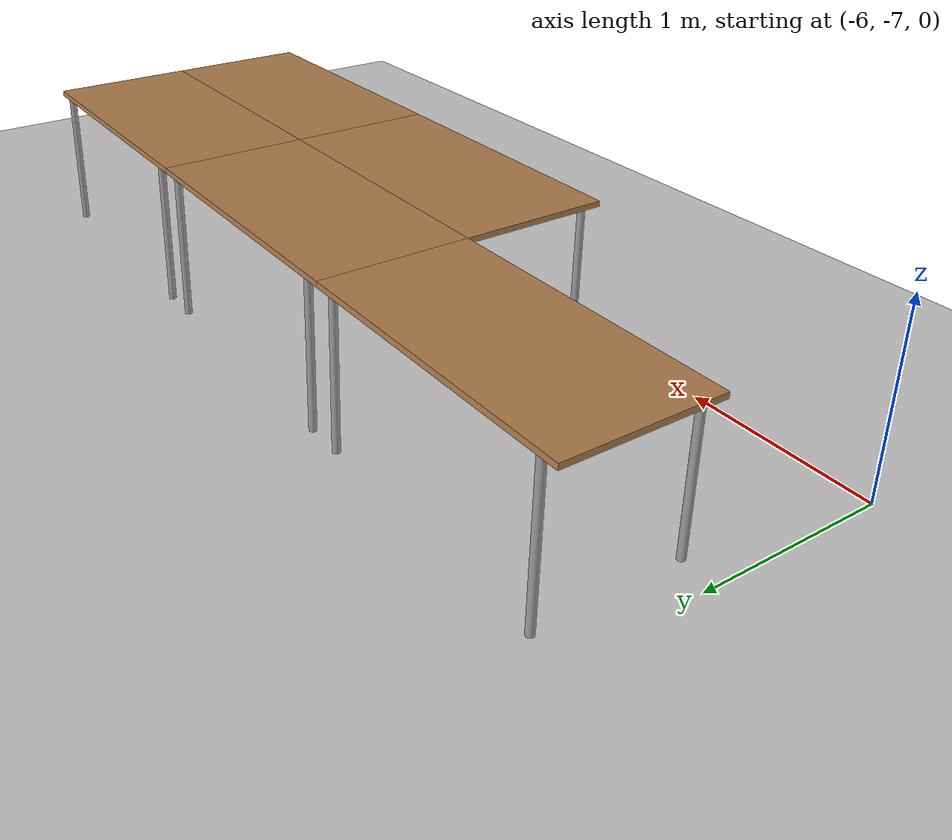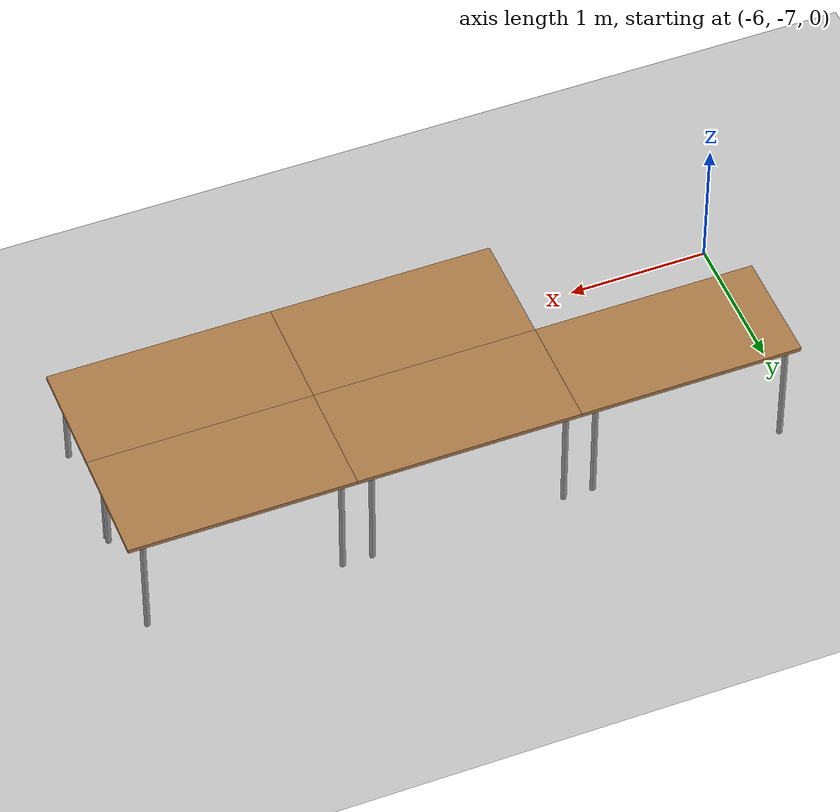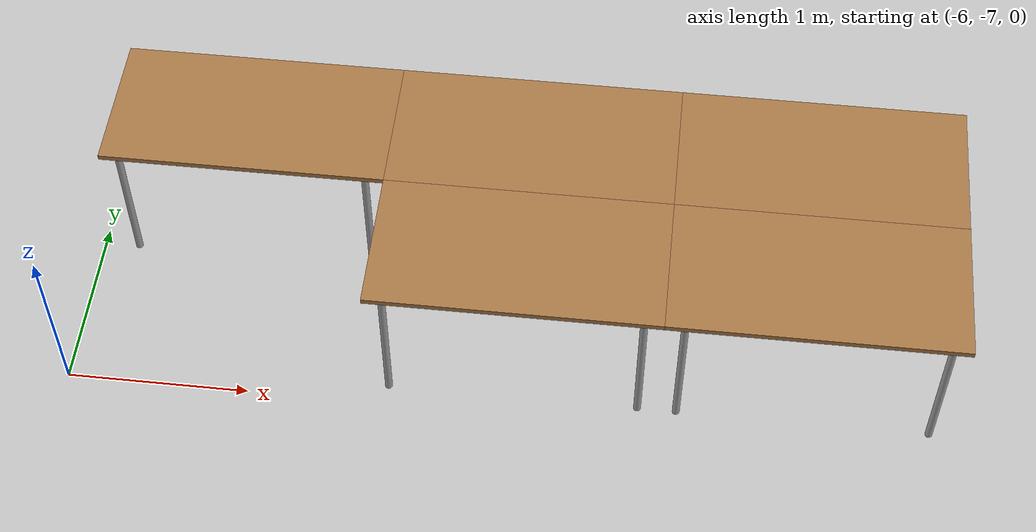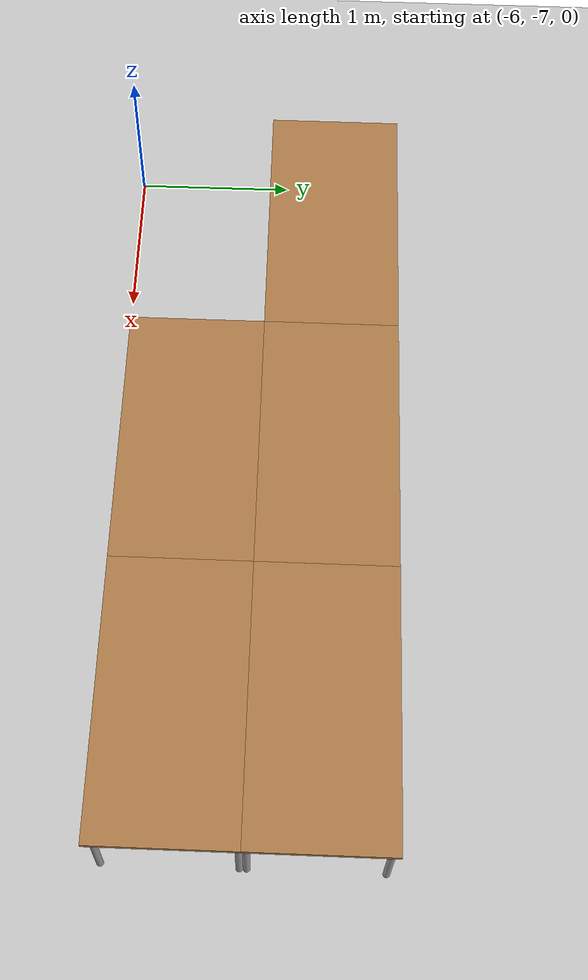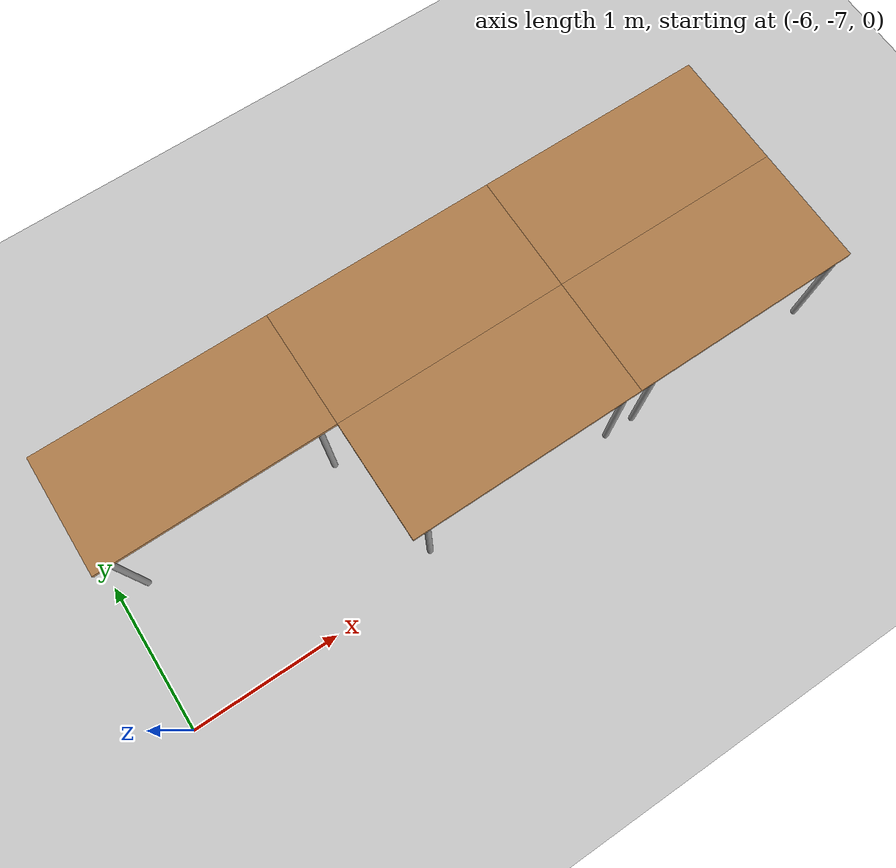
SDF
<sdf version="1.6">
 <world name="default">
  <model name="ground_plane">
   <static>1</static>
   <link name="link">
    <collision name="collision">
     <geometry><plane><normal>0 0 1</normal><size>100 100</size></plane></geometry>
     <surface><friction><ode><mu>100</mu><mu2>50</mu2></ode></friction></surface>
    </collision>
    <visual name="visual">
     <cast_shadows>0</cast_shadows>
     <geometry><plane><normal>0 0 1</normal><size>100 100</size></plane></geometry>
     <material>
      <script><uri>file://media/materials/scripts/gazebo.material</uri><name>Gazebo/Grey</name></script>
     </material>
    </visual>
   </link>
  </model>
  <model name="tablealt_0_clone_31">
   <link name="link">
    <inertial>
     <mass>1</mass>
     <inertia><ixx>1</ixx><ixy>0</ixy><ixz>0</ixz><iyy>1</iyy><iyz>0</iyz><izz>1</izz></inertia>
    </inertial>
    <visual name="back_right_leg">
     <pose>-0.68 -0.38 0.4 0 -0 0</pose>
     <geometry><cylinder><radius>0.02</radius><length>0.8</length></cylinder></geometry>
     <material>
      <script><uri>file://media/materials/scripts/gazebo.material</uri><name>Gazebo/Grey</name></script>
      <shader type="pixel"><normal_map>__default__</normal_map></shader>
      <ambient>0.3 0.3 0.3 1</ambient>
      <diffuse>0.7 0.7 0.7 1</diffuse>
      <specular>0.01 0.01 0.01 1</specular>
      <emissive>0 0 0 1</emissive>
     </material>
    </visual>
    <visual name="back_left_leg">
     <pose>-0.68 0.38 0.4 0 -0 0</pose>
     <geometry><cylinder><radius>0.02</radius><length>0.8</length></cylinder></geometry>
     <material>
      <script><uri>file://media/materials/scripts/gazebo.material</uri><name>Gazebo/Grey</name></script>
      <shader type="pixel"><normal_map>__default__</normal_map></shader>
      <ambient>0.3 0.3 0.3 1</ambient>
      <diffuse>0.7 0.7 0.7 1</diffuse>
      <specular>0.01 0.01 0.01 1</specular>
      <emissive>0 0 0 1</emissive>
     </material>
    </visual>
    <visual name="visual1">
     <pose>0 0 0.8 0 -0 0</pose>
     <geometry><box><size>1.57 0.8 0.03</size></box></geometry>
     <material>
      <script><uri>file://media/materials/scripts/gazebo.material</uri><name>Gazebo/Wood</name></script>
      <shader type="pixel"><normal_map>__default__</normal_map></shader>
      <ambient>0.92 0.92 0.68 1</ambient>
      <diffuse>1 1 1 1</diffuse>
      <specular>0.2 0.2 0.2 1</specular>
      <emissive>0 0 0 1</emissive>
     </material>
    </visual>
    <visual name="front_left_leg">
     <pose>0.68 0.38 0.4 0 -0 0</pose>
     <geometry><cylinder><radius>0.02</radius><length>0.8</length></cylinder></geometry>
     <material>
      <script><uri>file://media/materials/scripts/gazebo.material</uri><name>Gazebo/Grey</name></script>
      <shader type="pixel"><normal_map>__default__</normal_map></shader>
      <ambient>0.3 0.3 0.3 1</ambient>
      <diffuse>0.7 0.7 0.7 1</diffuse>
      <specular>0.01 0.01 0.01 1</specular>
      <emissive>0 0 0 1</emissive>
     </material>
    </visual>
    <visual name="front_right_leg">
     <pose>0.68 -0.38 0.4 0 -0 0</pose>
     <geometry><cylinder><radius>0.02</radius><length>0.8</length></cylinder></geometry>
     <material>
      <script><uri>file://media/materials/scripts/gazebo.material</uri><name>Gazebo/Grey</name></script>
      <shader type="pixel"><normal_map>__default__</normal_map></shader>
      <ambient>0.3 0.3 0.3 1</ambient>
      <diffuse>0.7 0.7 0.7 1</diffuse>
      <specular>0.01 0.01 0.01 1</specular>
      <emissive>0 0 0 1</emissive>
     </material>
    </visual>
    <collision name="front_right_leg">
     <pose>0.68 -0.38 0.4 0 -0 0</pose>
     <geometry><cylinder><radius>0.02</radius><length>0.8</length></cylinder></geometry>
     <surface>
      <friction>
       <ode><mu>1</mu><mu2>1</mu2><fdir1>0 0 0</fdir1><slip1>0</slip1><slip2>0</slip2></ode>
       <torsional>
        <coefficient>1</coefficient>
        <patch_radius>0</patch_radius>
        <surface_radius>0</surface_radius>
        <use_patch_radius>1</use_patch_radius>
        <ode><slip>0</slip></ode>
       </torsional>
      </friction>
      <bounce><restitution_coefficient>0</restitution_coefficient><threshold>1e+06</threshold></bounce>
      <contact>
       <collide_without_contact>0</collide_without_contact>
       <collide_without_contact_bitmask>1</collide_without_contact_bitmask>
       <collide_bitmask>1</collide_bitmask>
       <ode>
        <soft_cfm>0</soft_cfm>
        <soft_erp>0.2</soft_erp>
        <kp>1e+13</kp>
        <kd>1</kd>
        <max_vel>0.01</max_vel>
        <min_depth>0</min_depth>
       </ode>
       <bullet>
        <split_impulse>1</split_impulse>
        <split_impulse_penetration_threshold>-0.01</split_impulse_penetration_threshold>
        <soft_cfm>0</soft_cfm>
        <soft_erp>0.2</soft_erp>
        <kp>1e+13</kp>
        <kd>1</kd>
       </bullet>
      </contact>
     </surface>
    </collision>
    <collision name="surface">
     <pose>0 0 0.8 0 -0 0</pose>
     <geometry><box><size>1.5 0.8 0.03</size></box></geometry>
     <surface>
      <friction>
       <ode><mu>0.6</mu><mu2>0.6</mu2><fdir1>0 0 0</fdir1><slip1>0</slip1><slip2>0</slip2></ode>
       <torsional>
        <coefficient>1</coefficient>
        <patch_radius>0</patch_radius>
        <surface_radius>0</surface_radius>
        <use_patch_radius>1</use_patch_radius>
        <ode><slip>0</slip></ode>
       </torsional>
      </friction>
      <bounce><restitution_coefficient>0</restitution_coefficient><threshold>1e+06</threshold></bounce>
      <contact>
       <collide_without_contact>0</collide_without_contact>
       <collide_without_contact_bitmask>1</collide_without_contact_bitmask>
       <collide_bitmask>1</collide_bitmask>
       <ode>
        <soft_cfm>0</soft_cfm>
        <soft_erp>0.2</soft_erp>
        <kp>1e+13</kp>
        <kd>1</kd>
        <max_vel>0.01</max_vel>
        <min_depth>0</min_depth>
       </ode>
       <bullet>
        <split_impulse>1</split_impulse>
        <split_impulse_penetration_threshold>-0.01</split_impulse_penetration_threshold>
        <soft_cfm>0</soft_cfm>
        <soft_erp>0.2</soft_erp>
        <kp>1e+13</kp>
        <kd>1</kd>
       </bullet>
      </contact>
     </surface>
    </collision>
    <collision name="front_left_leg">
     <pose>0.68 0.38 0.4 0 -0 0</pose>
     <geometry><cylinder><radius>0.02</radius><length>0.8</length></cylinder></geometry>
     <surface>
      <friction>
       <ode><mu>1</mu><mu2>1</mu2><fdir1>0 0 0</fdir1><slip1>0</slip1><slip2>0</slip2></ode>
       <torsional>
        <coefficient>1</coefficient>
        <patch_radius>0</patch_radius>
        <surface_radius>0</surface_radius>
        <use_patch_radius>1</use_patch_radius>
        <ode><slip>0</slip></ode>
       </torsional>
      </friction>
      <bounce><restitution_coefficient>0</restitution_coefficient><threshold>1e+06</threshold></bounce>
      <contact>
       <collide_without_contact>0</collide_without_contact>
       <collide_without_contact_bitmask>1</collide_without_contact_bitmask>
       <collide_bitmask>1</collide_bitmask>
       <ode>
        <soft_cfm>0</soft_cfm>
        <soft_erp>0.2</soft_erp>
        <kp>1e+13</kp>
        <kd>1</kd>
        <max_vel>0.01</max_vel>
        <min_depth>0</min_depth>
       </ode>
       <bullet>
        <split_impulse>1</split_impulse>
        <split_impulse_penetration_threshold>-0.01</split_impulse_penetration_threshold>
        <soft_cfm>0</soft_cfm>
        <soft_erp>0.2</soft_erp>
        <kp>1e+13</kp>
        <kd>1</kd>
       </bullet>
      </contact>
     </surface>
    </collision>
    <collision name="back_left_leg">
     <pose>-0.68 0.38 0.4 0 -0 0</pose>
     <geometry><cylinder><radius>0.02</radius><length>0.8</length></cylinder></geometry>
     <surface>
      <friction>
       <ode><mu>1</mu><mu2>1</mu2><fdir1>0 0 0</fdir1><slip1>0</slip1><slip2>0</slip2></ode>
       <torsional>
        <coefficient>1</coefficient>
        <patch_radius>0</patch_radius>
        <surface_radius>0</surface_radius>
        <use_patch_radius>1</use_patch_radius>
        <ode><slip>0</slip></ode>
       </torsional>
      </friction>
      <bounce><restitution_coefficient>0</restitution_coefficient><threshold>1e+06</threshold></bounce>
      <contact>
       <collide_without_contact>0</collide_without_contact>
       <collide_without_contact_bitmask>1</collide_without_contact_bitmask>
       <collide_bitmask>1</collide_bitmask>
       <ode>
        <soft_cfm>0</soft_cfm>
        <soft_erp>0.2</soft_erp>
        <kp>1e+13</kp>
        <kd>1</kd>
        <max_vel>0.01</max_vel>
        <min_depth>0</min_depth>
       </ode>
       <bullet>
        <split_impulse>1</split_impulse>
        <split_impulse_penetration_threshold>-0.01</split_impulse_penetration_threshold>
        <soft_cfm>0</soft_cfm>
        <soft_erp>0.2</soft_erp>
        <kp>1e+13</kp>
        <kd>1</kd>
       </bullet>
      </contact>
     </surface>
    </collision>
    <collision name="back_right_leg">
     <pose>-0.68 -0.38 0.4 0 -0 0</pose>
     <geometry><cylinder><radius>0.02</radius><length>0.8</length></cylinder></geometry>
     <surface>
      <friction>
       <ode><mu>1</mu><mu2>1</mu2><fdir1>0 0 0</fdir1><slip1>0</slip1><slip2>0</slip2></ode>
       <torsional>
        <coefficient>1</coefficient>
        <patch_radius>0</patch_radius>
        <surface_radius>0</surface_radius>
        <use_patch_radius>1</use_patch_radius>
        <ode><slip>0</slip></ode>
       </torsional>
      </friction>
      <bounce><restitution_coefficient>0</restitution_coefficient><threshold>1e+06</threshold></bounce>
      <contact>
       <collide_without_contact>0</collide_without_contact>
       <collide_without_contact_bitmask>1</collide_without_contact_bitmask>
       <collide_bitmask>1</collide_bitmask>
       <ode>
        <soft_cfm>0</soft_cfm>
        <soft_erp>0.2</soft_erp>
        <kp>1e+13</kp>
        <kd>1</kd>
        <max_vel>0.01</max_vel>
        <min_depth>0</min_depth>
       </ode>
       <bullet>
        <split_impulse>1</split_impulse>
        <split_impulse_penetration_threshold>-0.01</split_impulse_penetration_threshold>
        <soft_cfm>0</soft_cfm>
        <soft_erp>0.2</soft_erp>
        <kp>1e+13</kp>
        <kd>1</kd>
       </bullet>
      </contact>
     </surface>
    </collision>
   </link>
   <static>1</static>
   <pose>-3.56 -6.5 0 0 -0 0</pose>
  </model>
  <model name="tablealt_0_clone_32">
   <link name="link">
    <inertial>
     <mass>1</mass>
     <inertia><ixx>1</ixx><ixy>0</ixy><ixz>0</ixz><iyy>1</iyy><iyz>0</iyz><izz>1</izz></inertia>
    </inertial>
    <visual name="back_right_leg">
     <pose>-0.68 -0.38 0.4 0 -0 0</pose>
     <geometry><cylinder><radius>0.02</radius><length>0.8</length></cylinder></geometry>
     <material>
      <script><uri>file://media/materials/scripts/gazebo.material</uri><name>Gazebo/Grey</name></script>
      <shader type="pixel"><normal_map>__default__</normal_map></shader>
      <ambient>0.3 0.3 0.3 1</ambient>
      <diffuse>0.7 0.7 0.7 1</diffuse>
      <specular>0.01 0.01 0.01 1</specular>
      <emissive>0 0 0 1</emissive>
     </material>
    </visual>
    <visual name="back_left_leg">
     <pose>-0.68 0.38 0.4 0 -0 0</pose>
     <geometry><cylinder><radius>0.02</radius><length>0.8</length></cylinder></geometry>
     <material>
      <script><uri>file://media/materials/scripts/gazebo.material</uri><name>Gazebo/Grey</name></script>
      <shader type="pixel"><normal_map>__default__</normal_map></shader>
      <ambient>0.3 0.3 0.3 1</ambient>
      <diffuse>0.7 0.7 0.7 1</diffuse>
      <specular>0.01 0.01 0.01 1</specular>
      <emissive>0 0 0 1</emissive>
     </material>
    </visual>
    <visual name="visual1">
     <pose>0 0 0.8 0 -0 0</pose>
     <geometry><box><size>1.57 0.8 0.03</size></box></geometry>
     <material>
      <script><uri>file://media/materials/scripts/gazebo.material</uri><name>Gazebo/Wood</name></script>
      <shader type="pixel"><normal_map>__default__</normal_map></shader>
      <ambient>0.92 0.92 0.68 1</ambient>
      <diffuse>1 1 1 1</diffuse>
      <specular>0.2 0.2 0.2 1</specular>
      <emissive>0 0 0 1</emissive>
     </material>
    </visual>
    <visual name="front_left_leg">
     <pose>0.68 0.38 0.4 0 -0 0</pose>
     <geometry><cylinder><radius>0.02</radius><length>0.8</length></cylinder></geometry>
     <material>
      <script><uri>file://media/materials/scripts/gazebo.material</uri><name>Gazebo/Grey</name></script>
      <shader type="pixel"><normal_map>__default__</normal_map></shader>
      <ambient>0.3 0.3 0.3 1</ambient>
      <diffuse>0.7 0.7 0.7 1</diffuse>
      <specular>0.01 0.01 0.01 1</specular>
      <emissive>0 0 0 1</emissive>
     </material>
    </visual>
    <visual name="front_right_leg">
     <pose>0.68 -0.38 0.4 0 -0 0</pose>
     <geometry><cylinder><radius>0.02</radius><length>0.8</length></cylinder></geometry>
     <material>
      <script><uri>file://media/materials/scripts/gazebo.material</uri><name>Gazebo/Grey</name></script>
      <shader type="pixel"><normal_map>__default__</normal_map></shader>
      <ambient>0.3 0.3 0.3 1</ambient>
      <diffuse>0.7 0.7 0.7 1</diffuse>
      <specular>0.01 0.01 0.01 1</specular>
      <emissive>0 0 0 1</emissive>
     </material>
    </visual>
    <collision name="front_right_leg">
     <pose>0.68 -0.38 0.4 0 -0 0</pose>
     <geometry><cylinder><radius>0.02</radius><length>0.8</length></cylinder></geometry>
     <surface>
      <friction>
       <ode><mu>1</mu><mu2>1</mu2><fdir1>0 0 0</fdir1><slip1>0</slip1><slip2>0</slip2></ode>
       <torsional>
        <coefficient>1</coefficient>
        <patch_radius>0</patch_radius>
        <surface_radius>0</surface_radius>
        <use_patch_radius>1</use_patch_radius>
        <ode><slip>0</slip></ode>
       </torsional>
      </friction>
      <bounce><restitution_coefficient>0</restitution_coefficient><threshold>1e+06</threshold></bounce>
      <contact>
       <collide_without_contact>0</collide_without_contact>
       <collide_without_contact_bitmask>1</collide_without_contact_bitmask>
       <collide_bitmask>1</collide_bitmask>
       <ode>
        <soft_cfm>0</soft_cfm>
        <soft_erp>0.2</soft_erp>
        <kp>1e+13</kp>
        <kd>1</kd>
        <max_vel>0.01</max_vel>
        <min_depth>0</min_depth>
       </ode>
       <bullet>
        <split_impulse>1</split_impulse>
        <split_impulse_penetration_threshold>-0.01</split_impulse_penetration_threshold>
        <soft_cfm>0</soft_cfm>
        <soft_erp>0.2</soft_erp>
        <kp>1e+13</kp>
        <kd>1</kd>
       </bullet>
      </contact>
     </surface>
    </collision>
    <collision name="surface">
     <pose>0 0 0.8 0 -0 0</pose>
     <geometry><box><size>1.5 0.8 0.03</size></box></geometry>
     <surface>
      <friction>
       <ode><mu>0.6</mu><mu2>0.6</mu2><fdir1>0 0 0</fdir1><slip1>0</slip1><slip2>0</slip2></ode>
       <torsional>
        <coefficient>1</coefficient>
        <patch_radius>0</patch_radius>
        <surface_radius>0</surface_radius>
        <use_patch_radius>1</use_patch_radius>
        <ode><slip>0</slip></ode>
       </torsional>
      </friction>
      <bounce><restitution_coefficient>0</restitution_coefficient><threshold>1e+06</threshold></bounce>
      <contact>
       <collide_without_contact>0</collide_without_contact>
       <collide_without_contact_bitmask>1</collide_without_contact_bitmask>
       <collide_bitmask>1</collide_bitmask>
       <ode>
        <soft_cfm>0</soft_cfm>
        <soft_erp>0.2</soft_erp>
        <kp>1e+13</kp>
        <kd>1</kd>
        <max_vel>0.01</max_vel>
        <min_depth>0</min_depth>
       </ode>
       <bullet>
        <split_impulse>1</split_impulse>
        <split_impulse_penetration_threshold>-0.01</split_impulse_penetration_threshold>
        <soft_cfm>0</soft_cfm>
        <soft_erp>0.2</soft_erp>
        <kp>1e+13</kp>
        <kd>1</kd>
       </bullet>
      </contact>
     </surface>
    </collision>
    <collision name="front_left_leg">
     <pose>0.68 0.38 0.4 0 -0 0</pose>
     <geometry><cylinder><radius>0.02</radius><length>0.8</length></cylinder></geometry>
     <surface>
      <friction>
       <ode><mu>1</mu><mu2>1</mu2><fdir1>0 0 0</fdir1><slip1>0</slip1><slip2>0</slip2></ode>
       <torsional>
        <coefficient>1</coefficient>
        <patch_radius>0</patch_radius>
        <surface_radius>0</surface_radius>
        <use_patch_radius>1</use_patch_radius>
        <ode><slip>0</slip></ode>
       </torsional>
      </friction>
      <bounce><restitution_coefficient>0</restitution_coefficient><threshold>1e+06</threshold></bounce>
      <contact>
       <collide_without_contact>0</collide_without_contact>
       <collide_without_contact_bitmask>1</collide_without_contact_bitmask>
       <collide_bitmask>1</collide_bitmask>
       <ode>
        <soft_cfm>0</soft_cfm>
        <soft_erp>0.2</soft_erp>
        <kp>1e+13</kp>
        <kd>1</kd>
        <max_vel>0.01</max_vel>
        <min_depth>0</min_depth>
       </ode>
       <bullet>
        <split_impulse>1</split_impulse>
        <split_impulse_penetration_threshold>-0.01</split_impulse_penetration_threshold>
        <soft_cfm>0</soft_cfm>
        <soft_erp>0.2</soft_erp>
        <kp>1e+13</kp>
        <kd>1</kd>
       </bullet>
      </contact>
     </surface>
    </collision>
    <collision name="back_left_leg">
     <pose>-0.68 0.38 0.4 0 -0 0</pose>
     <geometry><cylinder><radius>0.02</radius><length>0.8</length></cylinder></geometry>
     <surface>
      <friction>
       <ode><mu>1</mu><mu2>1</mu2><fdir1>0 0 0</fdir1><slip1>0</slip1><slip2>0</slip2></ode>
       <torsional>
        <coefficient>1</coefficient>
        <patch_radius>0</patch_radius>
        <surface_radius>0</surface_radius>
        <use_patch_radius>1</use_patch_radius>
        <ode><slip>0</slip></ode>
       </torsional>
      </friction>
      <bounce><restitution_coefficient>0</restitution_coefficient><threshold>1e+06</threshold></bounce>
      <contact>
       <collide_without_contact>0</collide_without_contact>
       <collide_without_contact_bitmask>1</collide_without_contact_bitmask>
       <collide_bitmask>1</collide_bitmask>
       <ode>
        <soft_cfm>0</soft_cfm>
        <soft_erp>0.2</soft_erp>
        <kp>1e+13</kp>
        <kd>1</kd>
        <max_vel>0.01</max_vel>
        <min_depth>0</min_depth>
       </ode>
       <bullet>
        <split_impulse>1</split_impulse>
        <split_impulse_penetration_threshold>-0.01</split_impulse_penetration_threshold>
        <soft_cfm>0</soft_cfm>
        <soft_erp>0.2</soft_erp>
        <kp>1e+13</kp>
        <kd>1</kd>
       </bullet>
      </contact>
     </surface>
    </collision>
    <collision name="back_right_leg">
     <pose>-0.68 -0.38 0.4 0 -0 0</pose>
     <geometry><cylinder><radius>0.02</radius><length>0.8</length></cylinder></geometry>
     <surface>
      <friction>
       <ode><mu>1</mu><mu2>1</mu2><fdir1>0 0 0</fdir1><slip1>0</slip1><slip2>0</slip2></ode>
       <torsional>
        <coefficient>1</coefficient>
        <patch_radius>0</patch_radius>
        <surface_radius>0</surface_radius>
        <use_patch_radius>1</use_patch_radius>
        <ode><slip>0</slip></ode>
       </torsional>
      </friction>
      <bounce><restitution_coefficient>0</restitution_coefficient><threshold>1e+06</threshold></bounce>
      <contact>
       <collide_without_contact>0</collide_without_contact>
       <collide_without_contact_bitmask>1</collide_without_contact_bitmask>
       <collide_bitmask>1</collide_bitmask>
       <ode>
        <soft_cfm>0</soft_cfm>
        <soft_erp>0.2</soft_erp>
        <kp>1e+13</kp>
        <kd>1</kd>
        <max_vel>0.01</max_vel>
        <min_depth>0</min_depth>
       </ode>
       <bullet>
        <split_impulse>1</split_impulse>
        <split_impulse_penetration_threshold>-0.01</split_impulse_penetration_threshold>
        <soft_cfm>0</soft_cfm>
        <soft_erp>0.2</soft_erp>
        <kp>1e+13</kp>
        <kd>1</kd>
       </bullet>
      </contact>
     </surface>
    </collision>
   </link>
   <static>1</static>
   <pose>-1.99 -6.5 0 0 -0 0</pose>
  </model>
  <model name="tablealt_0_clone_33">
   <link name="link">
    <inertial>
     <mass>1</mass>
     <inertia><ixx>1</ixx><ixy>0</ixy><ixz>0</ixz><iyy>1</iyy><iyz>0</iyz><izz>1</izz></inertia>
    </inertial>
    <visual name="back_right_leg">
     <pose>-0.68 -0.38 0.4 0 -0 0</pose>
     <geometry><cylinder><radius>0.02</radius><length>0.8</length></cylinder></geometry>
     <material>
      <script><uri>file://media/materials/scripts/gazebo.material</uri><name>Gazebo/Grey</name></script>
      <shader type="pixel"><normal_map>__default__</normal_map></shader>
      <ambient>0.3 0.3 0.3 1</ambient>
      <diffuse>0.7 0.7 0.7 1</diffuse>
      <specular>0.01 0.01 0.01 1</specular>
      <emissive>0 0 0 1</emissive>
     </material>
    </visual>
    <visual name="back_left_leg">
     <pose>-0.68 0.38 0.4 0 -0 0</pose>
     <geometry><cylinder><radius>0.02</radius><length>0.8</length></cylinder></geometry>
     <material>
      <script><uri>file://media/materials/scripts/gazebo.material</uri><name>Gazebo/Grey</name></script>
      <shader type="pixel"><normal_map>__default__</normal_map></shader>
      <ambient>0.3 0.3 0.3 1</ambient>
      <diffuse>0.7 0.7 0.7 1</diffuse>
      <specular>0.01 0.01 0.01 1</specular>
      <emissive>0 0 0 1</emissive>
     </material>
    </visual>
    <visual name="visual1">
     <pose>0 0 0.8 0 -0 0</pose>
     <geometry><box><size>1.57 0.8 0.03</size></box></geometry>
     <material>
      <script><uri>file://media/materials/scripts/gazebo.material</uri><name>Gazebo/Wood</name></script>
      <shader type="pixel"><normal_map>__default__</normal_map></shader>
      <ambient>0.92 0.92 0.68 1</ambient>
      <diffuse>1 1 1 1</diffuse>
      <specular>0.2 0.2 0.2 1</specular>
      <emissive>0 0 0 1</emissive>
     </material>
    </visual>
    <visual name="front_left_leg">
     <pose>0.68 0.38 0.4 0 -0 0</pose>
     <geometry><cylinder><radius>0.02</radius><length>0.8</length></cylinder></geometry>
     <material>
      <script><uri>file://media/materials/scripts/gazebo.material</uri><name>Gazebo/Grey</name></script>
      <shader type="pixel"><normal_map>__default__</normal_map></shader>
      <ambient>0.3 0.3 0.3 1</ambient>
      <diffuse>0.7 0.7 0.7 1</diffuse>
      <specular>0.01 0.01 0.01 1</specular>
      <emissive>0 0 0 1</emissive>
     </material>
    </visual>
    <visual name="front_right_leg">
     <pose>0.68 -0.38 0.4 0 -0 0</pose>
     <geometry><cylinder><radius>0.02</radius><length>0.8</length></cylinder></geometry>
     <material>
      <script><uri>file://media/materials/scripts/gazebo.material</uri><name>Gazebo/Grey</name></script>
      <shader type="pixel"><normal_map>__default__</normal_map></shader>
      <ambient>0.3 0.3 0.3 1</ambient>
      <diffuse>0.7 0.7 0.7 1</diffuse>
      <specular>0.01 0.01 0.01 1</specular>
      <emissive>0 0 0 1</emissive>
     </material>
    </visual>
    <collision name="front_right_leg">
     <pose>0.68 -0.38 0.4 0 -0 0</pose>
     <geometry><cylinder><radius>0.02</radius><length>0.8</length></cylinder></geometry>
     <surface>
      <friction>
       <ode><mu>1</mu><mu2>1</mu2><fdir1>0 0 0</fdir1><slip1>0</slip1><slip2>0</slip2></ode>
       <torsional>
        <coefficient>1</coefficient>
        <patch_radius>0</patch_radius>
        <surface_radius>0</surface_radius>
        <use_patch_radius>1</use_patch_radius>
        <ode><slip>0</slip></ode>
       </torsional>
      </friction>
      <bounce><restitution_coefficient>0</restitution_coefficient><threshold>1e+06</threshold></bounce>
      <contact>
       <collide_without_contact>0</collide_without_contact>
       <collide_without_contact_bitmask>1</collide_without_contact_bitmask>
       <collide_bitmask>1</collide_bitmask>
       <ode>
        <soft_cfm>0</soft_cfm>
        <soft_erp>0.2</soft_erp>
        <kp>1e+13</kp>
        <kd>1</kd>
        <max_vel>0.01</max_vel>
        <min_depth>0</min_depth>
       </ode>
       <bullet>
        <split_impulse>1</split_impulse>
        <split_impulse_penetration_threshold>-0.01</split_impulse_penetration_threshold>
        <soft_cfm>0</soft_cfm>
        <soft_erp>0.2</soft_erp>
        <kp>1e+13</kp>
        <kd>1</kd>
       </bullet>
      </contact>
     </surface>
    </collision>
    <collision name="surface">
     <pose>0 0 0.8 0 -0 0</pose>
     <geometry><box><size>1.5 0.8 0.03</size></box></geometry>
     <surface>
      <friction>
       <ode><mu>0.6</mu><mu2>0.6</mu2><fdir1>0 0 0</fdir1><slip1>0</slip1><slip2>0</slip2></ode>
       <torsional>
        <coefficient>1</coefficient>
        <patch_radius>0</patch_radius>
        <surface_radius>0</surface_radius>
        <use_patch_radius>1</use_patch_radius>
        <ode><slip>0</slip></ode>
       </torsional>
      </friction>
      <bounce><restitution_coefficient>0</restitution_coefficient><threshold>1e+06</threshold></bounce>
      <contact>
       <collide_without_contact>0</collide_without_contact>
       <collide_without_contact_bitmask>1</collide_without_contact_bitmask>
       <collide_bitmask>1</collide_bitmask>
       <ode>
        <soft_cfm>0</soft_cfm>
        <soft_erp>0.2</soft_erp>
        <kp>1e+13</kp>
        <kd>1</kd>
        <max_vel>0.01</max_vel>
        <min_depth>0</min_depth>
       </ode>
       <bullet>
        <split_impulse>1</split_impulse>
        <split_impulse_penetration_threshold>-0.01</split_impulse_penetration_threshold>
        <soft_cfm>0</soft_cfm>
        <soft_erp>0.2</soft_erp>
        <kp>1e+13</kp>
        <kd>1</kd>
       </bullet>
      </contact>
     </surface>
    </collision>
    <collision name="front_left_leg">
     <pose>0.68 0.38 0.4 0 -0 0</pose>
     <geometry><cylinder><radius>0.02</radius><length>0.8</length></cylinder></geometry>
     <surface>
      <friction>
       <ode><mu>1</mu><mu2>1</mu2><fdir1>0 0 0</fdir1><slip1>0</slip1><slip2>0</slip2></ode>
       <torsional>
        <coefficient>1</coefficient>
        <patch_radius>0</patch_radius>
        <surface_radius>0</surface_radius>
        <use_patch_radius>1</use_patch_radius>
        <ode><slip>0</slip></ode>
       </torsional>
      </friction>
      <bounce><restitution_coefficient>0</restitution_coefficient><threshold>1e+06</threshold></bounce>
      <contact>
       <collide_without_contact>0</collide_without_contact>
       <collide_without_contact_bitmask>1</collide_without_contact_bitmask>
       <collide_bitmask>1</collide_bitmask>
       <ode>
        <soft_cfm>0</soft_cfm>
        <soft_erp>0.2</soft_erp>
        <kp>1e+13</kp>
        <kd>1</kd>
        <max_vel>0.01</max_vel>
        <min_depth>0</min_depth>
       </ode>
       <bullet>
        <split_impulse>1</split_impulse>
        <split_impulse_penetration_threshold>-0.01</split_impulse_penetration_threshold>
        <soft_cfm>0</soft_cfm>
        <soft_erp>0.2</soft_erp>
        <kp>1e+13</kp>
        <kd>1</kd>
       </bullet>
      </contact>
     </surface>
    </collision>
    <collision name="back_left_leg">
     <pose>-0.68 0.38 0.4 0 -0 0</pose>
     <geometry><cylinder><radius>0.02</radius><length>0.8</length></cylinder></geometry>
     <surface>
      <friction>
       <ode><mu>1</mu><mu2>1</mu2><fdir1>0 0 0</fdir1><slip1>0</slip1><slip2>0</slip2></ode>
       <torsional>
        <coefficient>1</coefficient>
        <patch_radius>0</patch_radius>
        <surface_radius>0</surface_radius>
        <use_patch_radius>1</use_patch_radius>
        <ode><slip>0</slip></ode>
       </torsional>
      </friction>
      <bounce><restitution_coefficient>0</restitution_coefficient><threshold>1e+06</threshold></bounce>
      <contact>
       <collide_without_contact>0</collide_without_contact>
       <collide_without_contact_bitmask>1</collide_without_contact_bitmask>
       <collide_bitmask>1</collide_bitmask>
       <ode>
        <soft_cfm>0</soft_cfm>
        <soft_erp>0.2</soft_erp>
        <kp>1e+13</kp>
        <kd>1</kd>
        <max_vel>0.01</max_vel>
        <min_depth>0</min_depth>
       </ode>
       <bullet>
        <split_impulse>1</split_impulse>
        <split_impulse_penetration_threshold>-0.01</split_impulse_penetration_threshold>
        <soft_cfm>0</soft_cfm>
        <soft_erp>0.2</soft_erp>
        <kp>1e+13</kp>
        <kd>1</kd>
       </bullet>
      </contact>
     </surface>
    </collision>
    <collision name="back_right_leg">
     <pose>-0.68 -0.38 0.4 0 -0 0</pose>
     <geometry><cylinder><radius>0.02</radius><length>0.8</length></cylinder></geometry>
     <surface>
      <friction>
       <ode><mu>1</mu><mu2>1</mu2><fdir1>0 0 0</fdir1><slip1>0</slip1><slip2>0</slip2></ode>
       <torsional>
        <coefficient>1</coefficient>
        <patch_radius>0</patch_radius>
        <surface_radius>0</surface_radius>
        <use_patch_radius>1</use_patch_radius>
        <ode><slip>0</slip></ode>
       </torsional>
      </friction>
      <bounce><restitution_coefficient>0</restitution_coefficient><threshold>1e+06</threshold></bounce>
      <contact>
       <collide_without_contact>0</collide_without_contact>
       <collide_without_contact_bitmask>1</collide_without_contact_bitmask>
       <collide_bitmask>1</collide_bitmask>
       <ode>
        <soft_cfm>0</soft_cfm>
        <soft_erp>0.2</soft_erp>
        <kp>1e+13</kp>
        <kd>1</kd>
        <max_vel>0.01</max_vel>
        <min_depth>0</min_depth>
       </ode>
       <bullet>
        <split_impulse>1</split_impulse>
        <split_impulse_penetration_threshold>-0.01</split_impulse_penetration_threshold>
        <soft_cfm>0</soft_cfm>
        <soft_erp>0.2</soft_erp>
        <kp>1e+13</kp>
        <kd>1</kd>
       </bullet>
      </contact>
     </surface>
    </collision>
   </link>
   <static>1</static>
   <pose>-5.13 -5.7 0 0 -0 0</pose>
  </model>
  <model name="tablealt_0_clone_34">
   <link name="link">
    <inertial>
     <mass>1</mass>
     <inertia><ixx>1</ixx><ixy>0</ixy><ixz>0</ixz><iyy>1</iyy><iyz>0</iyz><izz>1</izz></inertia>
    </inertial>
    <visual name="back_right_leg">
     <pose>-0.68 -0.38 0.4 0 -0 0</pose>
     <geometry><cylinder><radius>0.02</radius><length>0.8</length></cylinder></geometry>
     <material>
      <script><uri>file://media/materials/scripts/gazebo.material</uri><name>Gazebo/Grey</name></script>
      <shader type="pixel"><normal_map>__default__</normal_map></shader>
      <ambient>0.3 0.3 0.3 1</ambient>
      <diffuse>0.7 0.7 0.7 1</diffuse>
      <specular>0.01 0.01 0.01 1</specular>
      <emissive>0 0 0 1</emissive>
     </material>
    </visual>
    <visual name="back_left_leg">
     <pose>-0.68 0.38 0.4 0 -0 0</pose>
     <geometry><cylinder><radius>0.02</radius><length>0.8</length></cylinder></geometry>
     <material>
      <script><uri>file://media/materials/scripts/gazebo.material</uri><name>Gazebo/Grey</name></script>
      <shader type="pixel"><normal_map>__default__</normal_map></shader>
      <ambient>0.3 0.3 0.3 1</ambient>
      <diffuse>0.7 0.7 0.7 1</diffuse>
      <specular>0.01 0.01 0.01 1</specular>
      <emissive>0 0 0 1</emissive>
     </material>
    </visual>
    <visual name="visual1">
     <pose>0 0 0.8 0 -0 0</pose>
     <geometry><box><size>1.57 0.8 0.03</size></box></geometry>
     <material>
      <script><uri>file://media/materials/scripts/gazebo.material</uri><name>Gazebo/Wood</name></script>
      <shader type="pixel"><normal_map>__default__</normal_map></shader>
      <ambient>0.92 0.92 0.68 1</ambient>
      <diffuse>1 1 1 1</diffuse>
      <specular>0.2 0.2 0.2 1</specular>
      <emissive>0 0 0 1</emissive>
     </material>
    </visual>
    <visual name="front_left_leg">
     <pose>0.68 0.38 0.4 0 -0 0</pose>
     <geometry><cylinder><radius>0.02</radius><length>0.8</length></cylinder></geometry>
     <material>
      <script><uri>file://media/materials/scripts/gazebo.material</uri><name>Gazebo/Grey</name></script>
      <shader type="pixel"><normal_map>__default__</normal_map></shader>
      <ambient>0.3 0.3 0.3 1</ambient>
      <diffuse>0.7 0.7 0.7 1</diffuse>
      <specular>0.01 0.01 0.01 1</specular>
      <emissive>0 0 0 1</emissive>
     </material>
    </visual>
    <visual name="front_right_leg">
     <pose>0.68 -0.38 0.4 0 -0 0</pose>
     <geometry><cylinder><radius>0.02</radius><length>0.8</length></cylinder></geometry>
     <material>
      <script><uri>file://media/materials/scripts/gazebo.material</uri><name>Gazebo/Grey</name></script>
      <shader type="pixel"><normal_map>__default__</normal_map></shader>
      <ambient>0.3 0.3 0.3 1</ambient>
      <diffuse>0.7 0.7 0.7 1</diffuse>
      <specular>0.01 0.01 0.01 1</specular>
      <emissive>0 0 0 1</emissive>
     </material>
    </visual>
    <collision name="front_right_leg">
     <pose>0.68 -0.38 0.4 0 -0 0</pose>
     <geometry><cylinder><radius>0.02</radius><length>0.8</length></cylinder></geometry>
     <surface>
      <friction>
       <ode><mu>1</mu><mu2>1</mu2><fdir1>0 0 0</fdir1><slip1>0</slip1><slip2>0</slip2></ode>
       <torsional>
        <coefficient>1</coefficient>
        <patch_radius>0</patch_radius>
        <surface_radius>0</surface_radius>
        <use_patch_radius>1</use_patch_radius>
        <ode><slip>0</slip></ode>
       </torsional>
      </friction>
      <bounce><restitution_coefficient>0</restitution_coefficient><threshold>1e+06</threshold></bounce>
      <contact>
       <collide_without_contact>0</collide_without_contact>
       <collide_without_contact_bitmask>1</collide_without_contact_bitmask>
       <collide_bitmask>1</collide_bitmask>
       <ode>
        <soft_cfm>0</soft_cfm>
        <soft_erp>0.2</soft_erp>
        <kp>1e+13</kp>
        <kd>1</kd>
        <max_vel>0.01</max_vel>
        <min_depth>0</min_depth>
       </ode>
       <bullet>
        <split_impulse>1</split_impulse>
        <split_impulse_penetration_threshold>-0.01</split_impulse_penetration_threshold>
        <soft_cfm>0</soft_cfm>
        <soft_erp>0.2</soft_erp>
        <kp>1e+13</kp>
        <kd>1</kd>
       </bullet>
      </contact>
     </surface>
    </collision>
    <collision name="surface">
     <pose>0 0 0.8 0 -0 0</pose>
     <geometry><box><size>1.5 0.8 0.03</size></box></geometry>
     <surface>
      <friction>
       <ode><mu>0.6</mu><mu2>0.6</mu2><fdir1>0 0 0</fdir1><slip1>0</slip1><slip2>0</slip2></ode>
       <torsional>
        <coefficient>1</coefficient>
        <patch_radius>0</patch_radius>
        <surface_radius>0</surface_radius>
        <use_patch_radius>1</use_patch_radius>
        <ode><slip>0</slip></ode>
       </torsional>
      </friction>
      <bounce><restitution_coefficient>0</restitution_coefficient><threshold>1e+06</threshold></bounce>
      <contact>
       <collide_without_contact>0</collide_without_contact>
       <collide_without_contact_bitmask>1</collide_without_contact_bitmask>
       <collide_bitmask>1</collide_bitmask>
       <ode>
        <soft_cfm>0</soft_cfm>
        <soft_erp>0.2</soft_erp>
        <kp>1e+13</kp>
        <kd>1</kd>
        <max_vel>0.01</max_vel>
        <min_depth>0</min_depth>
       </ode>
       <bullet>
        <split_impulse>1</split_impulse>
        <split_impulse_penetration_threshold>-0.01</split_impulse_penetration_threshold>
        <soft_cfm>0</soft_cfm>
        <soft_erp>0.2</soft_erp>
        <kp>1e+13</kp>
        <kd>1</kd>
       </bullet>
      </contact>
     </surface>
    </collision>
    <collision name="front_left_leg">
     <pose>0.68 0.38 0.4 0 -0 0</pose>
     <geometry><cylinder><radius>0.02</radius><length>0.8</length></cylinder></geometry>
     <surface>
      <friction>
       <ode><mu>1</mu><mu2>1</mu2><fdir1>0 0 0</fdir1><slip1>0</slip1><slip2>0</slip2></ode>
       <torsional>
        <coefficient>1</coefficient>
        <patch_radius>0</patch_radius>
        <surface_radius>0</surface_radius>
        <use_patch_radius>1</use_patch_radius>
        <ode><slip>0</slip></ode>
       </torsional>
      </friction>
      <bounce><restitution_coefficient>0</restitution_coefficient><threshold>1e+06</threshold></bounce>
      <contact>
       <collide_without_contact>0</collide_without_contact>
       <collide_without_contact_bitmask>1</collide_without_contact_bitmask>
       <collide_bitmask>1</collide_bitmask>
       <ode>
        <soft_cfm>0</soft_cfm>
        <soft_erp>0.2</soft_erp>
        <kp>1e+13</kp>
        <kd>1</kd>
        <max_vel>0.01</max_vel>
        <min_depth>0</min_depth>
       </ode>
       <bullet>
        <split_impulse>1</split_impulse>
        <split_impulse_penetration_threshold>-0.01</split_impulse_penetration_threshold>
        <soft_cfm>0</soft_cfm>
        <soft_erp>0.2</soft_erp>
        <kp>1e+13</kp>
        <kd>1</kd>
       </bullet>
      </contact>
     </surface>
    </collision>
    <collision name="back_left_leg">
     <pose>-0.68 0.38 0.4 0 -0 0</pose>
     <geometry><cylinder><radius>0.02</radius><length>0.8</length></cylinder></geometry>
     <surface>
      <friction>
       <ode><mu>1</mu><mu2>1</mu2><fdir1>0 0 0</fdir1><slip1>0</slip1><slip2>0</slip2></ode>
       <torsional>
        <coefficient>1</coefficient>
        <patch_radius>0</patch_radius>
        <surface_radius>0</surface_radius>
        <use_patch_radius>1</use_patch_radius>
        <ode><slip>0</slip></ode>
       </torsional>
      </friction>
      <bounce><restitution_coefficient>0</restitution_coefficient><threshold>1e+06</threshold></bounce>
      <contact>
       <collide_without_contact>0</collide_without_contact>
       <collide_without_contact_bitmask>1</collide_without_contact_bitmask>
       <collide_bitmask>1</collide_bitmask>
       <ode>
        <soft_cfm>0</soft_cfm>
        <soft_erp>0.2</soft_erp>
        <kp>1e+13</kp>
        <kd>1</kd>
        <max_vel>0.01</max_vel>
        <min_depth>0</min_depth>
       </ode>
       <bullet>
        <split_impulse>1</split_impulse>
        <split_impulse_penetration_threshold>-0.01</split_impulse_penetration_threshold>
        <soft_cfm>0</soft_cfm>
        <soft_erp>0.2</soft_erp>
        <kp>1e+13</kp>
        <kd>1</kd>
       </bullet>
      </contact>
     </surface>
    </collision>
    <collision name="back_right_leg">
     <pose>-0.68 -0.38 0.4 0 -0 0</pose>
     <geometry><cylinder><radius>0.02</radius><length>0.8</length></cylinder></geometry>
     <surface>
      <friction>
       <ode><mu>1</mu><mu2>1</mu2><fdir1>0 0 0</fdir1><slip1>0</slip1><slip2>0</slip2></ode>
       <torsional>
        <coefficient>1</coefficient>
        <patch_radius>0</patch_radius>
        <surface_radius>0</surface_radius>
        <use_patch_radius>1</use_patch_radius>
        <ode><slip>0</slip></ode>
       </torsional>
      </friction>
      <bounce><restitution_coefficient>0</restitution_coefficient><threshold>1e+06</threshold></bounce>
      <contact>
       <collide_without_contact>0</collide_without_contact>
       <collide_without_contact_bitmask>1</collide_without_contact_bitmask>
       <collide_bitmask>1</collide_bitmask>
       <ode>
        <soft_cfm>0</soft_cfm>
        <soft_erp>0.2</soft_erp>
        <kp>1e+13</kp>
        <kd>1</kd>
        <max_vel>0.01</max_vel>
        <min_depth>0</min_depth>
       </ode>
       <bullet>
        <split_impulse>1</split_impulse>
        <split_impulse_penetration_threshold>-0.01</split_impulse_penetration_threshold>
        <soft_cfm>0</soft_cfm>
        <soft_erp>0.2</soft_erp>
        <kp>1e+13</kp>
        <kd>1</kd>
       </bullet>
      </contact>
     </surface>
    </collision>
   </link>
   <static>1</static>
   <pose>-3.56 -5.7 0 0 -0 0</pose>
  </model>
  <model name="tablealt_0_clone_35">
   <link name="link">
    <inertial>
     <mass>1</mass>
     <inertia><ixx>1</ixx><ixy>0</ixy><ixz>0</ixz><iyy>1</iyy><iyz>0</iyz><izz>1</izz></inertia>
    </inertial>
    <visual name="back_right_leg">
     <pose>-0.68 -0.38 0.4 0 -0 0</pose>
     <geometry><cylinder><radius>0.02</radius><length>0.8</length></cylinder></geometry>
     <material>
      <script><uri>file://media/materials/scripts/gazebo.material</uri><name>Gazebo/Grey</name></script>
      <shader type="pixel"><normal_map>__default__</normal_map></shader>
      <ambient>0.3 0.3 0.3 1</ambient>
      <diffuse>0.7 0.7 0.7 1</diffuse>
      <specular>0.01 0.01 0.01 1</specular>
      <emissive>0 0 0 1</emissive>
     </material>
    </visual>
    <visual name="back_left_leg">
     <pose>-0.68 0.38 0.4 0 -0 0</pose>
     <geometry><cylinder><radius>0.02</radius><length>0.8</length></cylinder></geometry>
     <material>
      <script><uri>file://media/materials/scripts/gazebo.material</uri><name>Gazebo/Grey</name></script>
      <shader type="pixel"><normal_map>__default__</normal_map></shader>
      <ambient>0.3 0.3 0.3 1</ambient>
      <diffuse>0.7 0.7 0.7 1</diffuse>
      <specular>0.01 0.01 0.01 1</specular>
      <emissive>0 0 0 1</emissive>
     </material>
    </visual>
    <visual name="visual1">
     <pose>0 0 0.8 0 -0 0</pose>
     <geometry><box><size>1.57 0.8 0.03</size></box></geometry>
     <material>
      <script><uri>file://media/materials/scripts/gazebo.material</uri><name>Gazebo/Wood</name></script>
      <shader type="pixel"><normal_map>__default__</normal_map></shader>
      <ambient>0.92 0.92 0.68 1</ambient>
      <diffuse>1 1 1 1</diffuse>
      <specular>0.2 0.2 0.2 1</specular>
      <emissive>0 0 0 1</emissive>
     </material>
    </visual>
    <visual name="front_left_leg">
     <pose>0.68 0.38 0.4 0 -0 0</pose>
     <geometry><cylinder><radius>0.02</radius><length>0.8</length></cylinder></geometry>
     <material>
      <script><uri>file://media/materials/scripts/gazebo.material</uri><name>Gazebo/Grey</name></script>
      <shader type="pixel"><normal_map>__default__</normal_map></shader>
      <ambient>0.3 0.3 0.3 1</ambient>
      <diffuse>0.7 0.7 0.7 1</diffuse>
      <specular>0.01 0.01 0.01 1</specular>
      <emissive>0 0 0 1</emissive>
     </material>
    </visual>
    <visual name="front_right_leg">
     <pose>0.68 -0.38 0.4 0 -0 0</pose>
     <geometry><cylinder><radius>0.02</radius><length>0.8</length></cylinder></geometry>
     <material>
      <script><uri>file://media/materials/scripts/gazebo.material</uri><name>Gazebo/Grey</name></script>
      <shader type="pixel"><normal_map>__default__</normal_map></shader>
      <ambient>0.3 0.3 0.3 1</ambient>
      <diffuse>0.7 0.7 0.7 1</diffuse>
      <specular>0.01 0.01 0.01 1</specular>
      <emissive>0 0 0 1</emissive>
     </material>
    </visual>
    <collision name="front_right_leg">
     <pose>0.68 -0.38 0.4 0 -0 0</pose>
     <geometry><cylinder><radius>0.02</radius><length>0.8</length></cylinder></geometry>
     <surface>
      <friction>
       <ode><mu>1</mu><mu2>1</mu2><fdir1>0 0 0</fdir1><slip1>0</slip1><slip2>0</slip2></ode>
       <torsional>
        <coefficient>1</coefficient>
        <patch_radius>0</patch_radius>
        <surface_radius>0</surface_radius>
        <use_patch_radius>1</use_patch_radius>
        <ode><slip>0</slip></ode>
       </torsional>
      </friction>
      <bounce><restitution_coefficient>0</restitution_coefficient><threshold>1e+06</threshold></bounce>
      <contact>
       <collide_without_contact>0</collide_without_contact>
       <collide_without_contact_bitmask>1</collide_without_contact_bitmask>
       <collide_bitmask>1</collide_bitmask>
       <ode>
        <soft_cfm>0</soft_cfm>
        <soft_erp>0.2</soft_erp>
        <kp>1e+13</kp>
        <kd>1</kd>
        <max_vel>0.01</max_vel>
        <min_depth>0</min_depth>
       </ode>
       <bullet>
        <split_impulse>1</split_impulse>
        <split_impulse_penetration_threshold>-0.01</split_impulse_penetration_threshold>
        <soft_cfm>0</soft_cfm>
        <soft_erp>0.2</soft_erp>
        <kp>1e+13</kp>
        <kd>1</kd>
       </bullet>
      </contact>
     </surface>
    </collision>
    <collision name="surface">
     <pose>0 0 0.8 0 -0 0</pose>
     <geometry><box><size>1.5 0.8 0.03</size></box></geometry>
     <surface>
      <friction>
       <ode><mu>0.6</mu><mu2>0.6</mu2><fdir1>0 0 0</fdir1><slip1>0</slip1><slip2>0</slip2></ode>
       <torsional>
        <coefficient>1</coefficient>
        <patch_radius>0</patch_radius>
        <surface_radius>0</surface_radius>
        <use_patch_radius>1</use_patch_radius>
        <ode><slip>0</slip></ode>
       </torsional>
      </friction>
      <bounce><restitution_coefficient>0</restitution_coefficient><threshold>1e+06</threshold></bounce>
      <contact>
       <collide_without_contact>0</collide_without_contact>
       <collide_without_contact_bitmask>1</collide_without_contact_bitmask>
       <collide_bitmask>1</collide_bitmask>
       <ode>
        <soft_cfm>0</soft_cfm>
        <soft_erp>0.2</soft_erp>
        <kp>1e+13</kp>
        <kd>1</kd>
        <max_vel>0.01</max_vel>
        <min_depth>0</min_depth>
       </ode>
       <bullet>
        <split_impulse>1</split_impulse>
        <split_impulse_penetration_threshold>-0.01</split_impulse_penetration_threshold>
        <soft_cfm>0</soft_cfm>
        <soft_erp>0.2</soft_erp>
        <kp>1e+13</kp>
        <kd>1</kd>
       </bullet>
      </contact>
     </surface>
    </collision>
    <collision name="front_left_leg">
     <pose>0.68 0.38 0.4 0 -0 0</pose>
     <geometry><cylinder><radius>0.02</radius><length>0.8</length></cylinder></geometry>
     <surface>
      <friction>
       <ode><mu>1</mu><mu2>1</mu2><fdir1>0 0 0</fdir1><slip1>0</slip1><slip2>0</slip2></ode>
       <torsional>
        <coefficient>1</coefficient>
        <patch_radius>0</patch_radius>
        <surface_radius>0</surface_radius>
        <use_patch_radius>1</use_patch_radius>
        <ode><slip>0</slip></ode>
       </torsional>
      </friction>
      <bounce><restitution_coefficient>0</restitution_coefficient><threshold>1e+06</threshold></bounce>
      <contact>
       <collide_without_contact>0</collide_without_contact>
       <collide_without_contact_bitmask>1</collide_without_contact_bitmask>
       <collide_bitmask>1</collide_bitmask>
       <ode>
        <soft_cfm>0</soft_cfm>
        <soft_erp>0.2</soft_erp>
        <kp>1e+13</kp>
        <kd>1</kd>
        <max_vel>0.01</max_vel>
        <min_depth>0</min_depth>
       </ode>
       <bullet>
        <split_impulse>1</split_impulse>
        <split_impulse_penetration_threshold>-0.01</split_impulse_penetration_threshold>
        <soft_cfm>0</soft_cfm>
        <soft_erp>0.2</soft_erp>
        <kp>1e+13</kp>
        <kd>1</kd>
       </bullet>
      </contact>
     </surface>
    </collision>
    <collision name="back_left_leg">
     <pose>-0.68 0.38 0.4 0 -0 0</pose>
     <geometry><cylinder><radius>0.02</radius><length>0.8</length></cylinder></geometry>
     <surface>
      <friction>
       <ode><mu>1</mu><mu2>1</mu2><fdir1>0 0 0</fdir1><slip1>0</slip1><slip2>0</slip2></ode>
       <torsional>
        <coefficient>1</coefficient>
        <patch_radius>0</patch_radius>
        <surface_radius>0</surface_radius>
        <use_patch_radius>1</use_patch_radius>
        <ode><slip>0</slip></ode>
       </torsional>
      </friction>
      <bounce><restitution_coefficient>0</restitution_coefficient><threshold>1e+06</threshold></bounce>
      <contact>
       <collide_without_contact>0</collide_without_contact>
       <collide_without_contact_bitmask>1</collide_without_contact_bitmask>
       <collide_bitmask>1</collide_bitmask>
       <ode>
        <soft_cfm>0</soft_cfm>
        <soft_erp>0.2</soft_erp>
        <kp>1e+13</kp>
        <kd>1</kd>
        <max_vel>0.01</max_vel>
        <min_depth>0</min_depth>
       </ode>
       <bullet>
        <split_impulse>1</split_impulse>
        <split_impulse_penetration_threshold>-0.01</split_impulse_penetration_threshold>
        <soft_cfm>0</soft_cfm>
        <soft_erp>0.2</soft_erp>
        <kp>1e+13</kp>
        <kd>1</kd>
       </bullet>
      </contact>
     </surface>
    </collision>
    <collision name="back_right_leg">
     <pose>-0.68 -0.38 0.4 0 -0 0</pose>
     <geometry><cylinder><radius>0.02</radius><length>0.8</length></cylinder></geometry>
     <surface>
      <friction>
       <ode><mu>1</mu><mu2>1</mu2><fdir1>0 0 0</fdir1><slip1>0</slip1><slip2>0</slip2></ode>
       <torsional>
        <coefficient>1</coefficient>
        <patch_radius>0</patch_radius>
        <surface_radius>0</surface_radius>
        <use_patch_radius>1</use_patch_radius>
        <ode><slip>0</slip></ode>
       </torsional>
      </friction>
      <bounce><restitution_coefficient>0</restitution_coefficient><threshold>1e+06</threshold></bounce>
      <contact>
       <collide_without_contact>0</collide_without_contact>
       <collide_without_contact_bitmask>1</collide_without_contact_bitmask>
       <collide_bitmask>1</collide_bitmask>
       <ode>
        <soft_cfm>0</soft_cfm>
        <soft_erp>0.2</soft_erp>
        <kp>1e+13</kp>
        <kd>1</kd>
        <max_vel>0.01</max_vel>
        <min_depth>0</min_depth>
       </ode>
       <bullet>
        <split_impulse>1</split_impulse>
        <split_impulse_penetration_threshold>-0.01</split_impulse_penetration_threshold>
        <soft_cfm>0</soft_cfm>
        <soft_erp>0.2</soft_erp>
        <kp>1e+13</kp>
        <kd>1</kd>
       </bullet>
      </contact>
     </surface>
    </collision>
   </link>
   <static>1</static>
   <pose>-1.99 -5.7 0 0 -0 0</pose>
  </model>
 </world>
</sdf>
